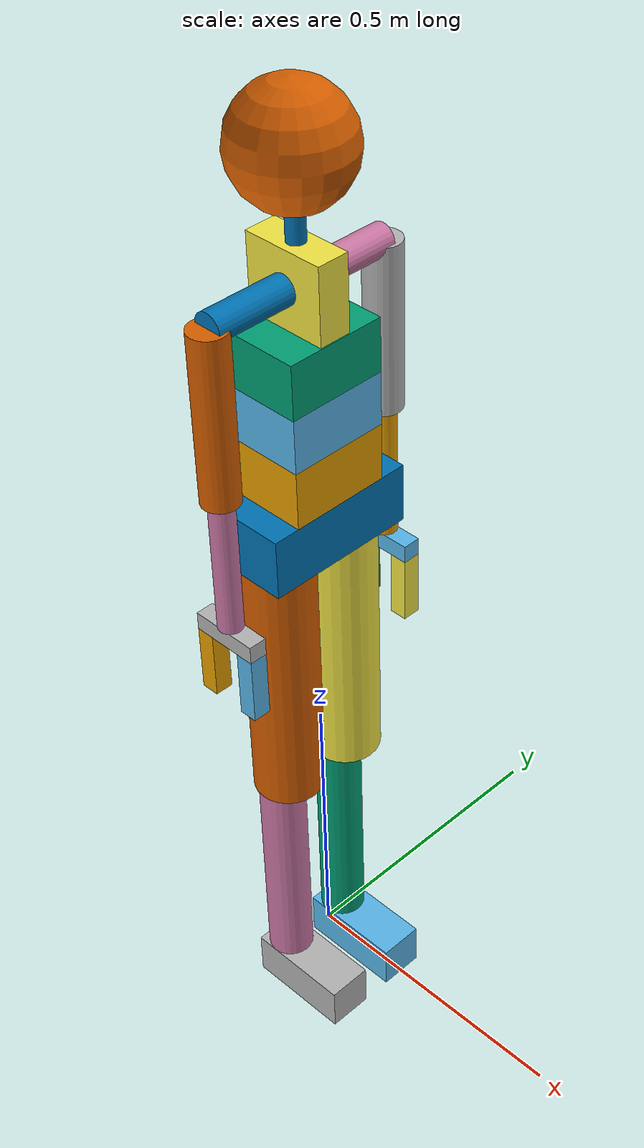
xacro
<?xml version="1.0" ?>

<robot name="mhuman" xmlns:xacro="http://www.ros.org/wiki/xacro">

   <link name="world"/>

   <joint name="jdummy" type="fixed">
     <parent link="world"/>
     <child link="right_foot"/>
   </joint>

   <!-- Lower Body pelvis and both legs and feet -->

   <link name="right_foot">

        <inertial>
          <mass value="0.8086"/>
          <origin xyz="0.08991 0 0.03925" rpy="0 0 0" />
          <inertia ixx="0.00079209" iyy="0.0025944" izz="0.0025558" ixy="0" ixz="0" iyz="0"/>
        </inertial>

        <collision>
          <origin xyz="0.08991 0 0.03925" rpy="0 0 0" />
          <geometry>
             <box size="0.17983    0.074775    0.078509"/>
          </geometry>
        </collision>

        <visual>
          <origin xyz="0.08991 0 0.03925" rpy="0 0 0" />
          <geometry>
             <box size="0.17983    0.074775    0.078509"/>
          </geometry>
        </visual>

   </link>

   <joint name="jright_ankle" type="fixed">
     <origin xyz="0.018694 0 0.078509" rpy="0 0 0"/>
     <parent link="right_foot"/>
     <child link="right_lower_leg"/>
   </joint>

   <link name="right_lower_leg">

        <inertial>
          <mass value="2.2703"/>
          <origin xyz="0.018694 0 0.20304" rpy="0 0 0" />
          <inertia ixx="0.031992" iyy="0.031992" izz="0.0015867" ixy="0" ixz="0" iyz="0"/>
        </inertial>

        <collision>
          <origin xyz="0.018694 0 0.20304" rpy="0 0 0" />
          <geometry>
             <cylinder length="0.40608" radius="0.037388"/>
          </geometry>
        </collision>

        <visual>
          <origin xyz="0.018694 0 0.20304" rpy="0 0 0" />
          <geometry>
             <cylinder length="0.40608" radius="0.037388"/>
          </geometry>
        </visual>
   </link>

   <joint name="jright_knee" type="fixed">
     <origin xyz="0.018694 0 0.40608" rpy="0 0 0"/>
     <parent link="right_lower_leg"/>
     <child link="right_upper_leg"/>
   </joint>

   <link name="right_upper_leg">

        <inertial>
          <mass value="7.775"/>
          <origin xyz="0.018694 0 0.22449" rpy="0 0 0" />
          <inertia ixx="0.13681" iyy="0.13681" izz="0.01241" ixy="0" ixz="0" iyz="0"/>
        </inertial>

        <collision>
          <origin xyz="0.018694 0 0.22449" rpy="0 0 0" />
          <geometry>
             <cylinder length="0.44898" radius="0.0565"/>
          </geometry>
        </collision>

        <visual>
          <origin xyz="0.018694 0 0.22449" rpy="0 0 0" />
          <geometry>
             <cylinder length="0.44898" radius="0.0565"/>
          </geometry>
        </visual>
   </link>

   <joint name="jright_hip" type="fixed">
     <origin xyz="0.018694 0 0.44898" rpy="0 0 0"/>
     <parent link="right_upper_leg"/>
     <child link="pelvis"/>
   </joint>

   <link name="pelvis">

        <inertial>
          <mass value="4.976"/>
          <origin xyz="0 -0.062285 0.0487345" rpy="0 0 0" />
          <inertia ixx="0.029678" iyy="0.011854" izz="0.033653" ixy="0" ixz="0" iyz="0"/>
        </inertial>

        <collision>
          <origin xyz="0 -0.062285 0.0487345" rpy="0 0 0" />
          <geometry>
             <box size="0.13815     0.24914    0.097469"/>
          </geometry>
        </collision>

        <visual>
          <origin xyz="0 -0.062285 0.0487345" rpy="0 0 0" />
          <geometry>
             <box size="0.13815     0.24914    0.097469"/>
          </geometry>
        </visual>

   </link>

   <joint name="jleft_hip" type="fixed">
     <origin xyz="0 -0.118785 0" rpy="0 0 0"/>
     <parent link="pelvis"/>
     <child link="left_upper_leg"/>
   </joint>
   <link name="left_upper_leg">

        <inertial>
          <mass value="7.775"/>
          <origin xyz="0 -0.005785 -0.22449" rpy="0 0 0" />
          <inertia ixx="0.13681" iyy="0.13681" izz="0.01241" ixy="0" ixz="0" iyz="0"/>
        </inertial>

        <collision>
          <origin xyz="0 -0.005785 -0.22449" rpy="0 0 0" />
          <geometry>
             <cylinder length="0.44898" radius="0.0565"/>
          </geometry>
        </collision>

        <visual>
          <origin xyz="0 -0.005785 -0.22449" rpy="0 0 0" />
          <geometry>
             <cylinder length="0.44898" radius="0.0565"/>
          </geometry>
        </visual>

   </link>

   <joint name="jleft_knee" type="fixed">
     <origin xyz="-0.018694 0 -0.44898" rpy="0 0 0"/>
     <parent link="left_upper_leg"/>
     <child link="left_lower_leg"/>
   </joint>
   <link name="left_lower_leg">

        <inertial>
          <mass value="2.2703"/>
          <origin xyz="0 -0.005785 -0.20304" rpy="0 0 0" />
          <inertia ixx="0.031992" iyy="0.031992" izz="0.0015867" ixy="0" ixz="0" iyz="0"/>
        </inertial>

        <collision>
          <origin xyz="0 -0.005785 -0.20304" rpy="0 0 0" />
          <geometry>
             <cylinder length="0.40608" radius="0.037388"/>
          </geometry>
        </collision>

        <visual>
          <origin xyz="0 -0.005785 -0.20304" rpy="0 0 0" />
          <geometry>
             <cylinder length="0.40608" radius="0.037388"/>
          </geometry>
        </visual>

   </link>

   <joint name="jleft_ankle" type="fixed">
     <origin xyz="-0.018694 0 -0.40608" rpy="0 0 0"/>
     <parent link="left_lower_leg"/>
     <child link="left_foot"/>
   </joint>

   <link name="left_foot">

        <inertial>
           <mass value="0.8086"/>
           <origin xyz="0.071216 -0.005785 -0.03925" rpy="0 0 0" />
           <inertia ixx="0.00079209" iyy="0.0025944" izz="0.0025558" ixy="0" ixz="0" iyz="0"/>
        </inertial>

        <collision>
          <origin xyz="0.071216 -0.005785 -0.03925" rpy="0 0 0" />
          <geometry>
             <box size="0.17983    0.074775    0.078509"/>
          </geometry>
        </collision>

        <visual>
          <origin xyz="0.071216 -0.005785 -0.03925" rpy="0 0 0" />
          <geometry>
             <box size="0.17983    0.074775    0.078509"/>
          </geometry>
        </visual>

   </link>

<!-- Upper Body from pelvis to head without arms -->

   <!-- Joint b/w pelvis and Link L5 -->
   <joint name="jtrunk_bottom" type="fixed">
     <origin xyz="0 -0.062285 0.095104" rpy="0 0 0"/>
     <parent link="pelvis"/>
     <child link="trunk_bottom"/>
   </joint>

    <!-- Link L5 -->
    <link name="trunk_bottom">

        <inertial>
           <mass value="6.3444"/>
           <origin xyz="0 0 0.047552" rpy="0 0 0" />
           <inertia ixx="0.018868" iyy="0.014872" izz="0.024177" ixy="0" ixz="0" iyz="0"/>
        </inertial>

        <collision>
          <origin xyz="0 0 0.047552" rpy="0 0 0" />
          <geometry>
             <box size="0.13815     0.16323    0.095104"/>
          </geometry>
        </collision>

        <visual>
          <origin xyz="0 0 0.047552" rpy="0 0 0" />
          <geometry>
             <box size="0.13815     0.16323    0.095104"/>
          </geometry>
        </visual>
   </link>

   <!-- Joint b/w pelvis and Link L3 -->
   <joint name="jtrunk_center" type="fixed">
     <origin xyz="0 0 0.095104" rpy="0 0 0"/>
     <parent link="trunk_bottom"/>
     <child link="trunk_center"/>
   </joint>
   <!-- Link L3 -->
   <link name="trunk_center">

        <inertial>
           <mass value="6.3444"/>
           <origin xyz="0 0 0.042958" rpy="0 0 0" />
           <inertia ixx="0.017989" iyy="0.013993" izz="0.024177" ixy="0" ixz="0" iyz="0"/>
        </inertial>

        <collision>
          <origin xyz="0 0 0.042958" rpy="0 0 0" />
          <geometry>
             <box size="0.13815     0.16323    0.095104"/>
          </geometry>
        </collision>

        <visual>
          <origin xyz="0 0 0.042958" rpy="0 0 0" />
          <geometry>
             <box size="0.13815     0.16323    0.085916"/>
          </geometry>
        </visual>
   </link>

     <!-- Joint b/w pelvis and Link T12 -->
     <joint name="jtrunk_ptop" type="fixed">
     <origin xyz="0 0 0.085916" rpy="0 0 0"/>
     <parent link="trunk_center"/>
     <child link="trunk_ptop"/>
   </joint>
     <!-- Link T12 -->
    <link name="trunk_ptop">

        <inertial>
           <mass value="6.3444"/>
           <origin xyz="0 0 0.042958" rpy="0 0 0" />
           <inertia ixx="0.017989" iyy="0.013993" izz="0.024177" ixy="0" ixz="0" iyz="0"/>
        </inertial>

        <collision>
          <origin xyz="0 0 0.042958" rpy="0 0 0" />
          <geometry>
             <box size="0.13815     0.16323    0.085916"/>
          </geometry>
        </collision>

        <visual>
          <origin xyz="0 0 0.042958" rpy="0 0 0" />
          <geometry>
             <box size="0.13815     0.16323    0.085916"/>
          </geometry>
        </visual>
   </link>

   <!-- Joint b/w pelvis and Link T8 -->
   <joint name="jtrunk_top" type="fixed">
     <origin xyz="0 0 0.085916" rpy="0 0 0"/>
     <parent link="trunk_ptop"/>
     <child link="trunk_top"/>
   </joint>
<!-- Link T8 -->
   <link name="trunk_top">

        <inertial>
           <mass value="2.488"/>
           <origin xyz="0 0 0.059875" rpy="0 0 0" />
           <inertia ixx="0.0035473" iyy="0.0067278" izz="0.0043289" ixy="0" ixz="0" iyz="0"/>
        </inertial>

        <collision>
          <origin xyz="0 0 0.059875" rpy="0 0 0" />
          <geometry>
             <box size="0.13457    0.052626     0.11975"/>
          </geometry>
        </collision>

        <visual>
          <origin xyz="0 0 0.059875" rpy="0 0 0" />
          <geometry>
             <box size="0.13457    0.052626     0.11975"/>
          </geometry>
        </visual>
   </link>

   <joint name="jneck" type="fixed">
     <origin xyz="0 0 0.11975" rpy="0 0 0"/>
     <parent link="trunk_top"/>
     <child link="neck"/>
   </joint>
   <link name="neck">

        <inertial>
           <mass value="0.7464"/>
           <origin xyz="0 0 0.044626" rpy="0 0 0" />
           <inertia ixx="0.0006461" iyy="0.0006461" izz="0.00030124" ixy="0" ixz="0" iyz="0"/>
        </inertial>

        <collision>
          <origin xyz="0 0 0.044626" rpy="0 0 0" />
          <geometry>
             <cylinder length="0.089252" radius="0.014205"/>
          </geometry>
        </collision>

        <visual>
          <origin xyz="0 0 0.044626" rpy="0 0 0" />
          <geometry>
             <cylinder length="0.089252" radius="0.014205"/>
          </geometry>
        </visual>
   </link>

   <joint name="jhead" type="fixed">
     <origin xyz="0 0 0.089252" rpy="0 0 0"/>
     <parent link="neck"/>
     <child link="head"/>
   </joint>
   <link name="head">

        <inertial>
           <mass value="2.2392"/>
           <origin xyz="0 0 0.0445025" rpy="0 0 0" />
           <inertia ixx="0.0070955" iyy="0.0070955" izz="0.0070955" ixy="0" ixz="0" iyz="0"/>
        </inertial>

        <collision>
          <origin xyz="0 0 0.0445025" rpy="0 0 0" />
          <geometry>
             <sphere radius="0.089005"/>
          </geometry>
        </collision>

          <visual>
          <origin xyz="0 0 0.0445025" rpy="0 0 0" />
          <geometry>
             <sphere radius="0.089005"/>
          </geometry>
        </visual>
   </link>

   <!--  Links from Right shoulder to hand-->

   <joint name="jright_shoulder" type="revolute">
     <axis xyz="0 1 0"/>
     <limit effort="30" velocity="1.0" lower="-3.14" upper="3.14" />
     <origin xyz="0 0.026313 0.059875" rpy="0 0 0"/>
     <parent link="trunk_top"/>
     <child link="right_shoulder"/>
   </joint>

   <transmission name="trans_jright_shoulder">
     <type>transmission_interface/SimpleTransmission</type>
     <joint name="jright_shoulder">
       <hardwareInterface>hardware_interface/PositionJointInterface</hardwareInterface>
     </joint>
     <actuator name="motor_jright_shoulder">
       <hardwareInterface>hardware_interface/PositionJointInterface</hardwareInterface>
       <mechanicalReduction>1</mechanicalReduction>
     </actuator>
   </transmission>

   <link name="right_shoulder">

        <inertial>
           <mass value="1.9282"/>
           <origin xyz="0 0.065235 0" rpy="1.5708 0 0" />
           <inertia ixx="0.0030029" iyy="0.00053578" izz="0.0030029" ixy="0" ixz="0" iyz="0"/>
        </inertial>

        <collision>
          <origin xyz="0 0.065235 0" rpy="1.5708 0 0" />
          <geometry>
             <cylinder length="0.13047" radius="0.023574"/>
          </geometry>
        </collision>

        <visual>
          <origin xyz="0 0.065235 0" rpy="1.5708 0 0" />
          <geometry>
             <cylinder length="0.13047" radius="0.023574"/>
          </geometry>
        </visual>
   </link>

   <joint name="jright_upper_arm" type="revolute">
     <axis xyz="1 0 0"/>
     <limit effort="30" velocity="1.0" lower="0" upper="1.5708" />
     <origin xyz="0 0.13047 0" rpy="-1.5708 0 0"/>
     <parent link="right_shoulder"/>
     <child link="right_upper_arm"/>
   </joint>

   <transmission name="trans_jright_upper_arm">
     <type>transmission_interface/SimpleTransmission</type>
     <joint name="jright_upper_arm">
       <hardwareInterface>hardware_interface/PositionJointInterface</hardwareInterface>
     </joint>
     <actuator name="motor_jright_upper_arm">
       <hardwareInterface>hardware_interface/PositionJointInterface</hardwareInterface>
       <mechanicalReduction>1</mechanicalReduction>
     </actuator>
   </transmission>

   <link name="right_upper_arm">

        <inertial>
           <mass value="1.866"/>
           <origin xyz="0 0.13497 0" rpy="1.5708 0 0" />
           <inertia ixx="0.011736" iyy="0.00080917" izz="0.011736" ixy="0" ixz="0" iyz="0"/>
        </inertial>

        <collision>
          <origin xyz="0 0.13497 0" rpy="1.5708 0 0" />
          <geometry>
             <cylinder length="0.26994" radius="0.029449"/>
          </geometry>
        </collision>

        <visual>
          <origin xyz="0 0.13497 0" rpy="1.5708 0 0" />
          <geometry>
             <cylinder length="0.26994" radius="0.029449"/>
          </geometry>
        </visual>
   </link>

   <joint name="jright_forearm" type="revolute">
     <axis xyz="0 0 1"/>
     <limit effort="30" velocity="1.0" lower="-1.5708" upper="0" />
     <origin xyz="0 0.26994 0" rpy="0 0 0"/>
     <parent link="right_upper_arm"/>
     <child link="right_forearm"/>
   </joint>

   <transmission name="trans_jright_forearm">
     <type>transmission_interface/SimpleTransmission</type>
     <joint name="jright_forearm">
       <hardwareInterface>hardware_interface/PositionJointInterface</hardwareInterface>
     </joint>
     <actuator name="motor_jright_forearm">
       <hardwareInterface>hardware_interface/PositionJointInterface</hardwareInterface>
       <mechanicalReduction>1</mechanicalReduction>
     </actuator>
   </transmission>

   <link name="right_forearm">

        <inertial>
           <mass value="1.244"/>
           <origin xyz="0 0.111235 0" rpy="-1.5708 0 0" />
           <inertia ixx="0.0052508" iyy="0.00023975" izz="0.0052508" ixy="0" ixz="0" iyz="0"/>
        </inertial>

        <collision>
          <origin xyz="0 0.111235 0" rpy="-1.5708 0 0" />
          <geometry>
             <cylinder length="0.22247" radius="0.019633"/>
          </geometry>
        </collision>

        <visual>
          <origin xyz="0 0.111235 0" rpy="-1.5708 0 0" />
          <geometry>
             <cylinder length="0.22247" radius="0.019633"/>
          </geometry>
        </visual>
   </link>

   <joint name="jright_wrist" type="fixed">
     <origin xyz="0 0.22247 0" rpy="0 -1.5708 0"/>
     <parent link="right_forearm"/>
     <child link="right_wrist"/>
   </joint>
   <link name="right_wrist">

        <inertial>
           <mass value="0.0492"/>
           <origin xyz="0 0.0147495 0" rpy="-1.5708 0 0" />
           <inertia ixx="0.00005448" iyy="0.000007111" izz="0.00005448" ixy="0" ixz="0" iyz="0"/>
        </inertial>

        <collision>
          <origin xyz="0 0.0147495 0" rpy="-1.5708 0 0" />
          <geometry>
             <box size="0.029449 0.11145 0.029449"/>
          </geometry>
        </collision>

        <visual>
          <origin xyz="0 0.0147495 0" rpy="-1.5708 0 0" />
          <geometry>
             <box size="0.029449 0.11145 0.029449"/>
          </geometry>
        </visual>

   </link>

   <joint name="jleft_grip_rhand" type="fixed">
     <origin xyz="0 0.029449 0.0410005" rpy="0 0 0"/>
     <parent link="right_wrist"/>
     <child link="left_grip_rhand"/>
   </joint>
   <link name="left_grip_rhand">

        <inertial>
           <mass value="0.0492"/>
           <origin xyz="0 0.055725 0" rpy="0 0 0" />
           <inertia ixx="0.00005448" iyy="0.000007111" izz="0.00005448" ixy="0" ixz="0" iyz="0"/>
        </inertial>

        <collision>
          <origin xyz="0 0.055725 0" rpy="0 0 0" />
          <geometry>
             <box size="0.029449 0.11145 0.029449"/>
          </geometry>
        </collision>

        <visual>
          <origin xyz="0 0.055725 0" rpy="0 0 0" />
          <geometry>
             <box size="0.029449 0.11145 0.029449"/>
          </geometry>
        </visual>
   </link>

   <joint name="jright_grip_rhand" type="prismatic">
     <axis xyz="0 0 1"/>
     <limit effort="30" velocity="1.0" lower="0" upper="0.04" />
     <origin xyz="0 0.029449 -0.0410005" rpy="0 0 0"/>
     <parent link="right_wrist"/>
     <child link="right_grip_rhand"/>
   </joint>

   <transmission name="trans_jright_grip_rhand">
     <type>transmission_interface/SimpleTransmission</type>
     <joint name="jright_grip_lhand">
       <hardwareInterface>hardware_interface/PositionJointInterface</hardwareInterface>
     </joint>
     <actuator name="motor_jright_grip_rhand">
       <hardwareInterface>hardware_interface/PositionJointInterface</hardwareInterface>
       <mechanicalReduction>1</mechanicalReduction>
     </actuator>
   </transmission>

   <link name="right_grip_rhand">

        <inertial>
           <mass value="0.0492"/>
           <origin xyz="0 0.055725 0" rpy="0 0 0" />
           <inertia ixx="0.00005448" iyy="0.000007111" izz="0.00005448" ixy="0" ixz="0" iyz="0"/>
        </inertial>

        <collision>
          <origin xyz="0 0.055725 0" rpy="0 0 0" />
          <geometry>
             <box size="0.029449 0.11145 0.029449"/>
          </geometry>
        </collision>

        <visual>
          <origin xyz="0 0.055725 0" rpy="0 0 0" />
          <geometry>
             <box size="0.029449 0.11145 0.029449"/>
          </geometry>
        </visual>
   </link>

   <!--  Links from left shoulder to hand-->

   <joint name="jleft_shoulder" type="revolute">
     <axis xyz="0 1 0"/>
     <limit effort="30" velocity="1.0" lower="-3.14" upper="3.14" />
     <origin xyz="0 -0.026313 0.059875" rpy="0 0 0"/>
     <parent link="trunk_top"/>
     <child link="left_shoulder"/>
   </joint>

   <transmission name="trans_jleft_shoulder">
     <type>transmission_interface/SimpleTransmission</type>
     <joint name="jleft_shoulder">
       <hardwareInterface>hardware_interface/PositionJointInterface</hardwareInterface>
     </joint>
     <actuator name="motor_jleft_shoulder">
       <hardwareInterface>hardware_interface/PositionJointInterface</hardwareInterface>
       <mechanicalReduction>1</mechanicalReduction>
     </actuator>
   </transmission>

   <link name="left_shoulder">

        <inertial>
           <mass value="1.9282"/>
           <origin xyz="0 -0.065235 0" rpy="1.5708 0 0" />
           <inertia ixx="0.0030029" iyy="0.00053578" izz="0.0030029" ixy="0" ixz="0" iyz="0"/>
        </inertial>

        <collision>
          <origin xyz="0 -0.065235 0" rpy="1.5708 0 0" />
          <geometry>
             <cylinder length="0.13047" radius="0.023574"/>
          </geometry>
        </collision>

        <visual>
          <origin xyz="0 -0.065235 0" rpy="1.5708 0 0" />
          <geometry>
             <cylinder length="0.13047" radius="0.023574"/>
          </geometry>
        </visual>
   </link>

   <joint name="jleft_upper_arm" type="revolute">
     <axis xyz="1 0 0"/>
     <limit effort="30" velocity="1.0" lower="-1.5708" upper="0" />
     <origin xyz="0 -0.13047 0" rpy="1.5708 0 0"/>
     <parent link="left_shoulder"/>
     <child link="left_upper_arm"/>
   </joint>

   <transmission name="trans_jleft_upper_arm">
     <type>transmission_interface/SimpleTransmission</type>
     <joint name="jleft_upper_arm">
       <hardwareInterface>hardware_interface/PositionJointInterface</hardwareInterface>
     </joint>
     <actuator name="motor_jleft_upper_arm">
       <hardwareInterface>hardware_interface/PositionJointInterface</hardwareInterface>
       <mechanicalReduction>1</mechanicalReduction>
     </actuator>
   </transmission>

   <link name="left_upper_arm">

        <inertial>
           <mass value="1.866"/>
           <origin xyz="0 -0.13497 0" rpy="1.5708 0 0" />
           <inertia ixx="0.011736" iyy="0.00080917" izz="0.011736" ixy="0" ixz="0" iyz="0"/>
        </inertial>

        <collision>
          <origin xyz="0 -0.13497 0" rpy="1.5708 0 0" />
          <geometry>
             <cylinder length="0.26994" radius="0.029449"/>
          </geometry>
        </collision>

        <visual>
          <origin xyz="0 -0.13497 0" rpy="1.5708 0 0" />
          <geometry>
             <cylinder length="0.26994" radius="0.029449"/>
          </geometry>
        </visual>
   </link>

   <joint name="jleft_forearm" type="revolute">
     <axis xyz="0 0 1"/>
     <limit effort="30" velocity="1.0" lower="0" upper="1.5708" />
     <origin xyz="0 -0.26994 0" rpy="0 0 0"/>
     <parent link="left_upper_arm"/>
     <child link="left_forearm"/>
   </joint>

   <transmission name="trans_jleft_forearm">
     <type>transmission_interface/SimpleTransmission</type>
     <joint name="jleft_forearm">
       <hardwareInterface>hardware_interface/PositionJointInterface</hardwareInterface>
     </joint>
     <actuator name="motor_jleft_forearm">
       <hardwareInterface>hardware_interface/PositionJointInterface</hardwareInterface>
       <mechanicalReduction>1</mechanicalReduction>
     </actuator>
   </transmission>

   <link name="left_forearm">

        <inertial>
           <mass value="1.244"/>
           <origin xyz="0 -0.111235 0" rpy="-1.5708 0 0" />
           <inertia ixx="0.0052508" iyy="0.00023975" izz="0.0052508" ixy="0" ixz="0" iyz="0"/>
        </inertial>

        <collision>
          <origin xyz="0 -0.111235 0" rpy="-1.5708 0 0" />
          <geometry>
             <cylinder length="0.22247" radius="0.019633"/>
          </geometry>
        </collision>

        <visual>
          <origin xyz="0 -0.111235 0" rpy="-1.5708 0 0" />
          <geometry>
             <cylinder length="0.22247" radius="0.019633"/>
          </geometry>
        </visual>
   </link>

   <joint name="jleft_wrist" type="revolute"> -->
     <axis xyz="0 1 0"/>
     <limit effort="30" velocity="1.0" lower="-3.14" upper="3.14" />
     <origin xyz="0 -0.22247 0" rpy="0 -1.5708 0"/>
     <parent link="left_forearm"/>
     <child link="left_wrist"/>
   </joint>

   <transmission name="trans_jleft_wrist">
     <type>transmission_interface/SimpleTransmission</type>
     <joint name="jleft_wrist">
       <hardwareInterface>hardware_interface/PositionJointInterface</hardwareInterface>
     </joint>
     <actuator name="motor_jleft_wrist">
       <hardwareInterface>hardware_interface/PositionJointInterface</hardwareInterface>
       <mechanicalReduction>1</mechanicalReduction>
     </actuator>
   </transmission>

   <link name="left_wrist">

        <inertial>
           <mass value="0.0492"/>
           <origin xyz="0 -0.0147495 0" rpy="-1.5708 0 0" />
           <inertia ixx="0.00005448" iyy="0.000007111" izz="0.00005448" ixy="0" ixz="0" iyz="0"/>
        </inertial>

        <collision>
          <origin xyz="0 -0.0147495 0" rpy="-1.5708 0 0" />
          <geometry>
             <box size="0.029449 0.11145 0.029449"/>
          </geometry>
        </collision>

        <visual>
          <origin xyz="0 -0.0147495 0" rpy="-1.5708 0 0" />
          <geometry>
             <box size="0.029449 0.11145 0.029449"/>
          </geometry>
        </visual>

   </link>

   <joint name="jleft_grip_lhand" type="fixed">
     <origin xyz="0 -0.029449 0.0410005" rpy="0 0 0"/>
     <parent link="left_wrist"/>
     <child link="left_grip_lhand"/>
   </joint>
   <link name="left_grip_lhand">

        <inertial>
           <mass value="0.0492"/>
           <origin xyz="0 -0.055725 0" rpy="0 0 0" />
           <inertia ixx="0.00005448" iyy="0.000007111" izz="0.00005448" ixy="0" ixz="0" iyz="0"/>
        </inertial>

        <collision>
          <origin xyz="0 -0.055725 0" rpy="0 0 0" />
          <geometry>
             <box size="0.029449 0.11145 0.029449"/>
          </geometry>
        </collision>

        <visual>
          <origin xyz="0 -0.055725 0" rpy="0 0 0" />
          <geometry>
             <box size="0.029449 0.11145 0.029449"/>
          </geometry>
        </visual>
   </link>

   <joint name="jright_grip_lhand" type="prismatic">
     <axis xyz="0 0 1"/>
     <limit effort="30" velocity="1.0" lower="0" upper="0.04" />
     <origin xyz="0 -0.029449 -0.0410005" rpy="0 0 0"/>
     <parent link="left_wrist"/>
     <child link="right_grip_lhand"/>
   </joint>

   <transmission name="trans_jright_grip_lhand">
     <type>transmission_interface/SimpleTransmission</type>
     <joint name="jright_grip_lhand">
       <hardwareInterface>hardware_interface/PositionJointInterface</hardwareInterface>
     </joint>
     <actuator name="motor_jright_grip_lhand">
       <hardwareInterface>hardware_interface/PositionJointInterface</hardwareInterface>
       <mechanicalReduction>1</mechanicalReduction>
     </actuator>
   </transmission>

   <link name="right_grip_lhand">

        <inertial>
           <mass value="0.0492"/>
           <origin xyz="0 -0.055725 0" rpy="0 0 0" />
           <inertia ixx="0.00005448" iyy="0.000007111" izz="0.00005448" ixy="0" ixz="0" iyz="0"/>
        </inertial>

        <collision>
          <origin xyz="0 -0.055725 0" rpy="0 0 0" />
          <geometry>
             <box size="0.029449 0.11145 0.029449"/>
          </geometry>
        </collision>

        <visual>
          <origin xyz="0 -0.055725 0" rpy="0 0 0" />
          <geometry>
             <box size="0.029449 0.11145 0.029449"/>
          </geometry>
        </visual>
   </link>

   <gazebo>
      <plugin name="gazebo_ros_control" filename="libgazebo_ros_control.so">
       <robotNamespace>/mhuman</robotNamespace>
       <legacyModeNS>true</legacyModeNS>
      </plugin>
   </gazebo>
   <gazebo>
      <plugin name="gazebo_grasp_fix" filename="libgazebo_ros_control.so">
          <arm>
           <arm_name> right_arm </arm_name>
           <palm_link> right_wrist </palm_link>
           <gripper_link> right_grip_rhand </gripper_link>
          </arm>
          <forces_angle_tolerance>100</forces_angle_tolerance>
          <update_rate> 4 </update_rate>
          <grip_count_threshold> 4 </grip_count_threshold>
          <max_grip_count> 8 </max_grip_count>
          <release_tolerance> 0.005 </release_tolerance>
          <disable_collisions_on_attach> false </disable_collisions_on_attach>
          <contact_topic> __default_topic__</contact_topic>
      </plugin>
    </gazebo>
</robot>
